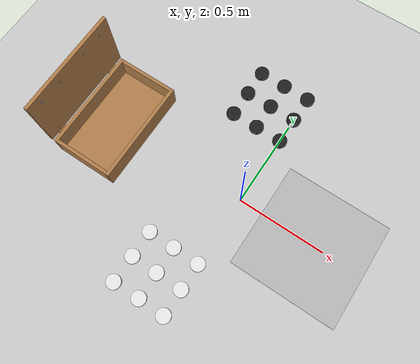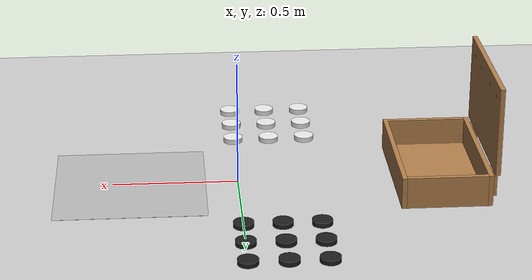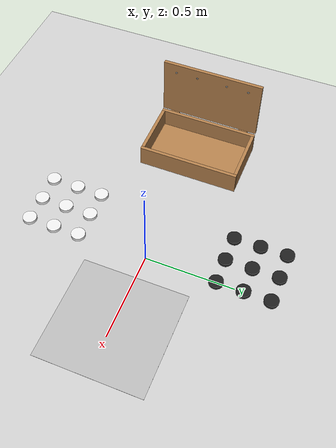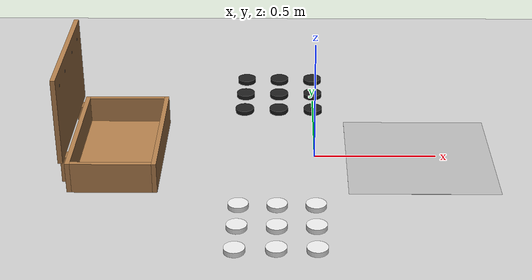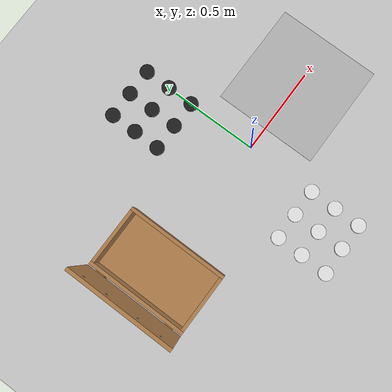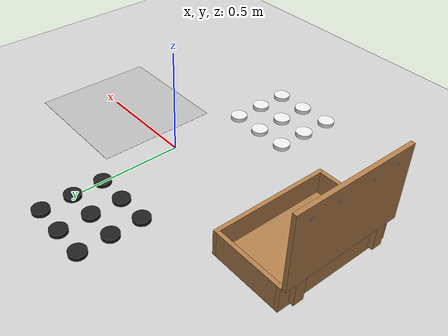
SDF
<sdf version="1.6">
 <world name="default">
  <light name="sun" type="directional">
   <pose>0 0 10 0 -0 0</pose>
   <diffuse>0.8 0.8 0.8 1</diffuse>
   <specular>0.2 0.2 0.2 1</specular>
   <attenuation>
    <range>1000</range>
    <constant>0.9</constant>
    <linear>0.01</linear>
    <quadratic>0.001</quadratic>
   </attenuation>
   <direction>-0.5 0.1 -0.9</direction>
  </light>
  <model name="ground_plane">
   <static>1</static>
   <link name="link">
    <collision name="collision">
     <geometry><plane><normal>0 0 1</normal><size>100 100</size></plane></geometry>
     <surface>
      <contact><collide_bitmask>65535</collide_bitmask></contact>
      <friction><ode><mu>100</mu><mu2>50</mu2></ode></friction>
     </surface>
    </collision>
    <visual name="visual">
     <cast_shadows>0</cast_shadows>
     <geometry><plane><normal>0 0 1</normal><size>100 100</size></plane></geometry>
     <material>
      <script><uri>file://media/materials/scripts/gazebo.material</uri><name>Gazebo/Grey</name></script>
     </material>
    </visual>
   </link>
  </model>
  <gravity>0 0 -9.8</gravity>
  <magnetic_field>6e-06 2.3e-05 -4.2e-05</magnetic_field>
  <atmosphere type="adiabatic"/>
  <physics name="default_physics" default="0" type="ode">
   <max_step_size>0.001</max_step_size>
   <real_time_factor>1</real_time_factor>
   <real_time_update_rate>1000</real_time_update_rate>
  </physics>
  <scene><ambient>0.4 0.4 0.4 1</ambient><background>0.7 0.7 0.7 1</background><shadows>1</shadows></scene>
  <audio><device>default</device></audio>
  <spherical_coordinates>
   <surface_model>EARTH_WGS84</surface_model>
   <latitude_deg>0</latitude_deg>
   <longitude_deg>0</longitude_deg>
   <elevation>0</elevation>
   <heading_deg>0</heading_deg>
  </spherical_coordinates>
  <model name="wooden_case">
   <link name="base">
    <pose>0 0 0.024 0 -0 0</pose>
    <inertial>
     <pose>-0.022184 0 0.171592 0 -0 0</pose>
     <mass>3.96264</mass>
     <inertia>
      <ixx>0.213536</ixx>
      <ixy>0</ixy>
      <ixz>0.000779377</ixz>
      <iyy>0.0708943</iyy>
      <iyz>0</iyz>
      <izz>0.154604</izz>
     </inertia>
    </inertial>
    <collision name="collision_back">
     <pose>-0.053975 0 0.1778 0 -0 0</pose>
     <geometry><box><size>0.01905 0.5461 0.3175</size></box></geometry>
     <surface>
      <contact>
       <poissons_ratio>0.347</poissons_ratio>
       <elastic_modulus>8.8e+09</elastic_modulus>
       <ode><kp>100000</kp><kd>100</kd><max_vel>100</max_vel><min_depth>0.001</min_depth></ode>
      </contact>
      <friction>
       <torsional>
        <coefficient>1</coefficient>
        <use_patch_radius>0</use_patch_radius>
        <surface_radius>0.01</surface_radius>
       </torsional>
      </friction>
     </surface>
    </collision>
    <visual name="visual_back">
     <pose>-0.053975 0 0.1778 0 -0 0</pose>
     <geometry><box><size>0.01905 0.5461 0.3175</size></box></geometry>
     <material>
      <script><uri>file://media/materials/scripts/gazebo.material</uri><name>Gazebo/Wood</name></script>
     </material>
    </visual>
    <collision name="collision_bottom">
     <pose>0 0 0.009525 0 -0 0</pose>
     <geometry><box><size>0.127 0.5842 0.01905</size></box></geometry>
     <surface>
      <contact>
       <poissons_ratio>0.347</poissons_ratio>
       <elastic_modulus>8.8e+09</elastic_modulus>
       <ode><kp>100000</kp><kd>100</kd><max_vel>100</max_vel><min_depth>0.001</min_depth></ode>
      </contact>
      <friction>
       <torsional>
        <coefficient>1</coefficient>
        <use_patch_radius>0</use_patch_radius>
        <surface_radius>0.01</surface_radius>
       </torsional>
      </friction>
     </surface>
    </collision>
    <visual name="visual_bottom">
     <pose>0 0 0.009525 0 -0 0</pose>
     <geometry><box><size>0.127 0.5842 0.01905</size></box></geometry>
     <material>
      <script><uri>file://media/materials/scripts/gazebo.material</uri><name>Gazebo/Wood</name></script>
     </material>
    </visual>
    <collision name="collision_top">
     <pose>0 0 0.346075 0 -0 0</pose>
     <geometry><box><size>0.127 0.5842 0.01905</size></box></geometry>
     <surface>
      <contact>
       <poissons_ratio>0.347</poissons_ratio>
       <elastic_modulus>8.8e+09</elastic_modulus>
       <ode><kp>100000</kp><kd>100</kd><max_vel>100</max_vel><min_depth>0.001</min_depth></ode>
      </contact>
      <friction>
       <torsional>
        <coefficient>1</coefficient>
        <use_patch_radius>0</use_patch_radius>
        <surface_radius>0.01</surface_radius>
       </torsional>
      </friction>
     </surface>
    </collision>
    <visual name="visual_top">
     <pose>0 0 0.346075 0 -0 0</pose>
     <geometry><box><size>0.127 0.5842 0.01905</size></box></geometry>
     <material>
      <script><uri>file://media/materials/scripts/gazebo.material</uri><name>Gazebo/Wood</name></script>
     </material>
    </visual>
    <collision name="collision_left">
     <pose>0 -0.282575 0.1778 0 -0 0</pose>
     <geometry><box><size>0.127 0.01905 0.3175</size></box></geometry>
     <surface>
      <contact>
       <poissons_ratio>0.347</poissons_ratio>
       <elastic_modulus>8.8e+09</elastic_modulus>
       <ode><kp>100000</kp><kd>100</kd><max_vel>100</max_vel><min_depth>0.001</min_depth></ode>
      </contact>
      <friction>
       <torsional>
        <coefficient>1</coefficient>
        <use_patch_radius>0</use_patch_radius>
        <surface_radius>0.01</surface_radius>
       </torsional>
      </friction>
     </surface>
    </collision>
    <visual name="visual_left">
     <pose>0 -0.282575 0.1778 0 -0 0</pose>
     <geometry><box><size>0.127 0.01905 0.3175</size></box></geometry>
     <material>
      <script><uri>file://media/materials/scripts/gazebo.material</uri><name>Gazebo/Wood</name></script>
     </material>
    </visual>
    <collision name="collision_right">
     <pose>0 0.282575 0.1778 0 -0 0</pose>
     <geometry><box><size>0.127 0.01905 0.3175</size></box></geometry>
     <surface>
      <contact>
       <poissons_ratio>0.347</poissons_ratio>
       <elastic_modulus>8.8e+09</elastic_modulus>
       <ode><kp>100000</kp><kd>100</kd><max_vel>100</max_vel><min_depth>0.001</min_depth></ode>
      </contact>
      <friction>
       <torsional>
        <coefficient>1</coefficient>
        <use_patch_radius>0</use_patch_radius>
        <surface_radius>0.01</surface_radius>
       </torsional>
      </friction>
     </surface>
    </collision>
    <visual name="visual_right">
     <pose>0 0.282575 0.1778 0 -0 0</pose>
     <geometry><box><size>0.127 0.01905 0.3175</size></box></geometry>
     <material>
      <script><uri>file://media/materials/scripts/gazebo.material</uri><name>Gazebo/Wood</name></script>
     </material>
    </visual>
    <collision name="collision_block_left">
     <pose>0.0095 -0.2151 -0.012 0 -0 0</pose>
     <geometry><box><size>0.108 0.05 0.024</size></box></geometry>
     <surface>
      <contact>
       <poissons_ratio>0.347</poissons_ratio>
       <elastic_modulus>8.8e+09</elastic_modulus>
       <ode><kp>100000</kp><kd>100</kd><max_vel>100</max_vel><min_depth>0.001</min_depth></ode>
      </contact>
      <friction>
       <torsional>
        <coefficient>1</coefficient>
        <use_patch_radius>0</use_patch_radius>
        <surface_radius>0.01</surface_radius>
       </torsional>
      </friction>
     </surface>
    </collision>
    <visual name="visual_block_left">
     <pose>0.0095 -0.2151 -0.012 0 -0 0</pose>
     <geometry><box><size>0.108 0.05 0.024</size></box></geometry>
     <material>
      <script><uri>file://media/materials/scripts/gazebo.material</uri><name>Gazebo/Wood</name></script>
     </material>
    </visual>
    <collision name="collision_block_right">
     <pose>0.0095 0.2151 -0.012 0 -0 0</pose>
     <geometry><box><size>0.108 0.05 0.024</size></box></geometry>
     <surface>
      <contact>
       <poissons_ratio>0.347</poissons_ratio>
       <elastic_modulus>8.8e+09</elastic_modulus>
       <ode><kp>100000</kp><kd>100</kd><max_vel>100</max_vel><min_depth>0.001</min_depth></ode>
      </contact>
      <friction>
       <torsional>
        <coefficient>1</coefficient>
        <use_patch_radius>0</use_patch_radius>
        <surface_radius>0.01</surface_radius>
       </torsional>
      </friction>
     </surface>
    </collision>
    <visual name="visual_block_right">
     <pose>0.0095 0.2151 -0.012 0 -0 0</pose>
     <geometry><box><size>0.108 0.05 0.024</size></box></geometry>
     <material>
      <script><uri>file://media/materials/scripts/gazebo.material</uri><name>Gazebo/Wood</name></script>
     </material>
    </visual>
   </link>
   <link name="lid">
    <pose>0.243775 0 0.009525 0 -0 0</pose>
    <inertial>
     <mass>1.97874</mass>
     <inertia>
      <ixx>0.0563367</ixx>
      <ixy>0</ixy>
      <ixz>0</ixz>
      <iyy>0.020911</iyy>
      <iyz>0</iyz>
      <izz>0.0771281</izz>
     </inertia>
    </inertial>
    <collision name="collision">
     <geometry><box><size>0.3556 0.5842 0.01905</size></box></geometry>
     <surface>
      <contact>
       <poissons_ratio>0.347</poissons_ratio>
       <elastic_modulus>8.8e+09</elastic_modulus>
       <ode><kp>100000</kp><kd>100</kd><max_vel>100</max_vel><min_depth>0.001</min_depth></ode>
      </contact>
      <friction>
       <torsional>
        <coefficient>1</coefficient>
        <use_patch_radius>0</use_patch_radius>
        <surface_radius>0.01</surface_radius>
       </torsional>
      </friction>
     </surface>
    </collision>
    <visual name="visual">
     <geometry><box><size>0.3556 0.5842 0.01905</size></box></geometry>
     <material>
      <script><uri>file://media/materials/scripts/gazebo.material</uri><name>Gazebo/Wood</name></script>
     </material>
    </visual>
    <visual name="tee_nut_1">
     <pose>0.122 -0.216 0 0 -0 0</pose>
     <geometry><cylinder><radius>0.00635</radius><length>0.0192405</length></cylinder></geometry>
     <material>
      <script><uri>file://media/materials/scripts/gazebo.material</uri><name>Gazebo/Grey</name></script>
     </material>
    </visual>
    <visual name="tee_nut_2">
     <pose>0.122 -0.088 0 0 -0 0</pose>
     <geometry><cylinder><radius>0.00635</radius><length>0.0192405</length></cylinder></geometry>
     <material>
      <script><uri>file://media/materials/scripts/gazebo.material</uri><name>Gazebo/Grey</name></script>
     </material>
    </visual>
    <visual name="tee_nut_3">
     <pose>0.122 0.088 0 0 -0 0</pose>
     <geometry><cylinder><radius>0.00635</radius><length>0.0192405</length></cylinder></geometry>
     <material>
      <script><uri>file://media/materials/scripts/gazebo.material</uri><name>Gazebo/Grey</name></script>
     </material>
    </visual>
    <visual name="tee_nut_4">
     <pose>0.122 0.216 0 0 -0 0</pose>
     <geometry><cylinder><radius>0.00635</radius><length>0.0192405</length></cylinder></geometry>
     <material>
      <script><uri>file://media/materials/scripts/gazebo.material</uri><name>Gazebo/Grey</name></script>
     </material>
    </visual>
   </link>
   <joint name="lid_hinge" type="revolute">
    <pose>-0.1778 0 0.01905 0 -0 0</pose>
    <parent>base</parent>
    <child>lid</child>
    <axis>
     <xyz>0 1 0</xyz>
     <limit><upper>0.523599</upper><lower>-1.5708</lower></limit>
     <use_parent_model_frame>0</use_parent_model_frame>
     <dynamics><spring_reference>0</spring_reference><spring_stiffness>0</spring_stiffness></dynamics>
    </axis>
   </joint>
   <pose>-0.999997 0 0.062475 0 -1.57074 3.14</pose>
  </model>
  <model name="black_piece">
   <link name="link">
    <inertial>
     <mass>0.2</mass>
     <inertia>
      <ixx>8.667e-05</ixx>
      <ixy>0</ixy>
      <ixz>0</ixz>
      <iyy>8.667e-05</iyy>
      <iyz>0</iyz>
      <izz>0.00016</izz>
     </inertia>
    </inertial>
    <visual name="visual">
     <geometry><cylinder><radius>0.04</radius><length>0.02</length></cylinder></geometry>
     <material>
      <script><name>Gazebo/Black</name><uri>file://media/materials/scripts/gazebo.material</uri></script>
      <shader type="vertex"><normal_map>__default__</normal_map></shader>
     </material>
    </visual>
    <collision name="collision">
     <geometry><cylinder><radius>0.04</radius><length>0.02</length></cylinder></geometry>
     <surface>
      <friction>
       <ode><mu>1</mu><mu2>1</mu2><fdir1>0 0 0</fdir1><slip1>0</slip1><slip2>0</slip2></ode>
       <torsional>
        <coefficient>1</coefficient>
        <patch_radius>0</patch_radius>
        <surface_radius>0</surface_radius>
        <use_patch_radius>1</use_patch_radius>
        <ode><slip>0</slip></ode>
       </torsional>
      </friction>
      <bounce><restitution_coefficient>0</restitution_coefficient><threshold>1e+06</threshold></bounce>
      <contact>
       <collide_without_contact>0</collide_without_contact>
       <collide_without_contact_bitmask>1</collide_without_contact_bitmask>
       <collide_bitmask>1</collide_bitmask>
       <ode>
        <soft_cfm>0</soft_cfm>
        <soft_erp>0.2</soft_erp>
        <kp>1e+13</kp>
        <kd>1</kd>
        <max_vel>1</max_vel>
        <min_depth>0</min_depth>
       </ode>
       <bullet>
        <split_impulse>1</split_impulse>
        <split_impulse_penetration_threshold>-0.01</split_impulse_penetration_threshold>
        <soft_cfm>0</soft_cfm>
        <soft_erp>0.2</soft_erp>
        <kp>1e+13</kp>
        <kd>1</kd>
       </bullet>
      </contact>
     </surface>
    </collision>
   </link>
   <static>0</static>
   <pose>-0.3 0.400001 0.009995 -3e-05 3e-05 0.000168</pose>
  </model>
  <model name="black_piece_0">
   <link name="link">
    <inertial>
     <mass>0.2</mass>
     <inertia>
      <ixx>8.667e-05</ixx>
      <ixy>0</ixy>
      <ixz>0</ixz>
      <iyy>8.667e-05</iyy>
      <iyz>0</iyz>
      <izz>0.00016</izz>
     </inertia>
    </inertial>
    <visual name="visual">
     <geometry><cylinder><radius>0.04</radius><length>0.02</length></cylinder></geometry>
     <material>
      <script><name>Gazebo/Black</name><uri>file://media/materials/scripts/gazebo.material</uri></script>
      <shader type="vertex"><normal_map>__default__</normal_map></shader>
     </material>
    </visual>
    <collision name="collision">
     <geometry><cylinder><radius>0.04</radius><length>0.02</length></cylinder></geometry>
     <surface>
      <friction>
       <ode><mu>1</mu><mu2>1</mu2><fdir1>0 0 0</fdir1><slip1>0</slip1><slip2>0</slip2></ode>
       <torsional>
        <coefficient>1</coefficient>
        <patch_radius>0</patch_radius>
        <surface_radius>0</surface_radius>
        <use_patch_radius>1</use_patch_radius>
        <ode><slip>0</slip></ode>
       </torsional>
      </friction>
      <bounce><restitution_coefficient>0</restitution_coefficient><threshold>1e+06</threshold></bounce>
      <contact>
       <collide_without_contact>0</collide_without_contact>
       <collide_without_contact_bitmask>1</collide_without_contact_bitmask>
       <collide_bitmask>1</collide_bitmask>
       <ode>
        <soft_cfm>0</soft_cfm>
        <soft_erp>0.2</soft_erp>
        <kp>1e+13</kp>
        <kd>1</kd>
        <max_vel>1</max_vel>
        <min_depth>0</min_depth>
       </ode>
       <bullet>
        <split_impulse>1</split_impulse>
        <split_impulse_penetration_threshold>-0.01</split_impulse_penetration_threshold>
        <soft_cfm>0</soft_cfm>
        <soft_erp>0.2</soft_erp>
        <kp>1e+13</kp>
        <kd>1</kd>
       </bullet>
      </contact>
     </surface>
    </collision>
   </link>
   <static>0</static>
   <pose>2e-06 0.400008 0.010007 -0.000196 0.000505 0.156241</pose>
  </model>
  <model name="black_piece_1">
   <link name="link">
    <inertial>
     <mass>0.2</mass>
     <inertia>
      <ixx>8.667e-05</ixx>
      <ixy>0</ixy>
      <ixz>0</ixz>
      <iyy>8.667e-05</iyy>
      <iyz>0</iyz>
      <izz>0.00016</izz>
     </inertia>
    </inertial>
    <visual name="visual">
     <geometry><cylinder><radius>0.04</radius><length>0.02</length></cylinder></geometry>
     <material>
      <script><name>Gazebo/Black</name><uri>file://media/materials/scripts/gazebo.material</uri></script>
      <shader type="vertex"><normal_map>__default__</normal_map></shader>
     </material>
    </visual>
    <collision name="collision">
     <geometry><cylinder><radius>0.04</radius><length>0.02</length></cylinder></geometry>
     <surface>
      <friction>
       <ode><mu>1</mu><mu2>1</mu2><fdir1>0 0 0</fdir1><slip1>0</slip1><slip2>0</slip2></ode>
       <torsional>
        <coefficient>1</coefficient>
        <patch_radius>0</patch_radius>
        <surface_radius>0</surface_radius>
        <use_patch_radius>1</use_patch_radius>
        <ode><slip>0</slip></ode>
       </torsional>
      </friction>
      <bounce><restitution_coefficient>0</restitution_coefficient><threshold>1e+06</threshold></bounce>
      <contact>
       <collide_without_contact>0</collide_without_contact>
       <collide_without_contact_bitmask>1</collide_without_contact_bitmask>
       <collide_bitmask>1</collide_bitmask>
       <ode>
        <soft_cfm>0</soft_cfm>
        <soft_erp>0.2</soft_erp>
        <kp>1e+13</kp>
        <kd>1</kd>
        <max_vel>1</max_vel>
        <min_depth>0</min_depth>
       </ode>
       <bullet>
        <split_impulse>1</split_impulse>
        <split_impulse_penetration_threshold>-0.01</split_impulse_penetration_threshold>
        <soft_cfm>0</soft_cfm>
        <soft_erp>0.2</soft_erp>
        <kp>1e+13</kp>
        <kd>1</kd>
       </bullet>
      </contact>
     </surface>
    </collision>
   </link>
   <static>0</static>
   <pose>-1e-06 0.55 0.009995 6.5e-05 -6.5e-05 1.5e-05</pose>
  </model>
  <model name="black_piece_2">
   <link name="link">
    <inertial>
     <mass>0.2</mass>
     <inertia>
      <ixx>8.667e-05</ixx>
      <ixy>0</ixy>
      <ixz>0</ixz>
      <iyy>8.667e-05</iyy>
      <iyz>0</iyz>
      <izz>0.00016</izz>
     </inertia>
    </inertial>
    <visual name="visual">
     <geometry><cylinder><radius>0.04</radius><length>0.02</length></cylinder></geometry>
     <material>
      <script><name>Gazebo/Black</name><uri>file://media/materials/scripts/gazebo.material</uri></script>
      <shader type="vertex"><normal_map>__default__</normal_map></shader>
     </material>
    </visual>
    <collision name="collision">
     <geometry><cylinder><radius>0.04</radius><length>0.02</length></cylinder></geometry>
     <surface>
      <friction>
       <ode><mu>1</mu><mu2>1</mu2><fdir1>0 0 0</fdir1><slip1>0</slip1><slip2>0</slip2></ode>
       <torsional>
        <coefficient>1</coefficient>
        <patch_radius>0</patch_radius>
        <surface_radius>0</surface_radius>
        <use_patch_radius>1</use_patch_radius>
        <ode><slip>0</slip></ode>
       </torsional>
      </friction>
      <bounce><restitution_coefficient>0</restitution_coefficient><threshold>1e+06</threshold></bounce>
      <contact>
       <collide_without_contact>0</collide_without_contact>
       <collide_without_contact_bitmask>1</collide_without_contact_bitmask>
       <collide_bitmask>1</collide_bitmask>
       <ode>
        <soft_cfm>0</soft_cfm>
        <soft_erp>0.2</soft_erp>
        <kp>1e+13</kp>
        <kd>1</kd>
        <max_vel>1</max_vel>
        <min_depth>0</min_depth>
       </ode>
       <bullet>
        <split_impulse>1</split_impulse>
        <split_impulse_penetration_threshold>-0.01</split_impulse_penetration_threshold>
        <soft_cfm>0</soft_cfm>
        <soft_erp>0.2</soft_erp>
        <kp>1e+13</kp>
        <kd>1</kd>
       </bullet>
      </contact>
     </surface>
    </collision>
   </link>
   <static>0</static>
   <pose>0.000928 0.700002 0.009995 -5.5e-05 4.4e-05 0.348925</pose>
  </model>
  <model name="black_piece_3">
   <link name="link">
    <inertial>
     <mass>0.2</mass>
     <inertia>
      <ixx>8.667e-05</ixx>
      <ixy>0</ixy>
      <ixz>0</ixz>
      <iyy>8.667e-05</iyy>
      <iyz>0</iyz>
      <izz>0.00016</izz>
     </inertia>
    </inertial>
    <visual name="visual">
     <geometry><cylinder><radius>0.04</radius><length>0.02</length></cylinder></geometry>
     <material>
      <script><name>Gazebo/Black</name><uri>file://media/materials/scripts/gazebo.material</uri></script>
      <shader type="vertex"><normal_map>__default__</normal_map></shader>
     </material>
    </visual>
    <collision name="collision">
     <geometry><cylinder><radius>0.04</radius><length>0.02</length></cylinder></geometry>
     <surface>
      <friction>
       <ode><mu>1</mu><mu2>1</mu2><fdir1>0 0 0</fdir1><slip1>0</slip1><slip2>0</slip2></ode>
       <torsional>
        <coefficient>1</coefficient>
        <patch_radius>0</patch_radius>
        <surface_radius>0</surface_radius>
        <use_patch_radius>1</use_patch_radius>
        <ode><slip>0</slip></ode>
       </torsional>
      </friction>
      <bounce><restitution_coefficient>0</restitution_coefficient><threshold>1e+06</threshold></bounce>
      <contact>
       <collide_without_contact>0</collide_without_contact>
       <collide_without_contact_bitmask>1</collide_without_contact_bitmask>
       <collide_bitmask>1</collide_bitmask>
       <ode>
        <soft_cfm>0</soft_cfm>
        <soft_erp>0.2</soft_erp>
        <kp>1e+13</kp>
        <kd>1</kd>
        <max_vel>1</max_vel>
        <min_depth>0</min_depth>
       </ode>
       <bullet>
        <split_impulse>1</split_impulse>
        <split_impulse_penetration_threshold>-0.01</split_impulse_penetration_threshold>
        <soft_cfm>0</soft_cfm>
        <soft_erp>0.2</soft_erp>
        <kp>1e+13</kp>
        <kd>1</kd>
       </bullet>
      </contact>
     </surface>
    </collision>
   </link>
   <static>0</static>
   <pose>-0.3 0.7 0.009995 -3e-05 3e-05 -1.2e-05</pose>
  </model>
  <model name="black_piece_4">
   <link name="link">
    <inertial>
     <mass>0.2</mass>
     <inertia>
      <ixx>8.667e-05</ixx>
      <ixy>0</ixy>
      <ixz>0</ixz>
      <iyy>8.667e-05</iyy>
      <iyz>0</iyz>
      <izz>0.00016</izz>
     </inertia>
    </inertial>
    <visual name="visual">
     <geometry><cylinder><radius>0.04</radius><length>0.02</length></cylinder></geometry>
     <material>
      <script><name>Gazebo/Black</name><uri>file://media/materials/scripts/gazebo.material</uri></script>
      <shader type="vertex"><normal_map>__default__</normal_map></shader>
     </material>
    </visual>
    <collision name="collision">
     <geometry><cylinder><radius>0.04</radius><length>0.02</length></cylinder></geometry>
     <surface>
      <friction>
       <ode><mu>1</mu><mu2>1</mu2><fdir1>0 0 0</fdir1><slip1>0</slip1><slip2>0</slip2></ode>
       <torsional>
        <coefficient>1</coefficient>
        <patch_radius>0</patch_radius>
        <surface_radius>0</surface_radius>
        <use_patch_radius>1</use_patch_radius>
        <ode><slip>0</slip></ode>
       </torsional>
      </friction>
      <bounce><restitution_coefficient>0</restitution_coefficient><threshold>1e+06</threshold></bounce>
      <contact>
       <collide_without_contact>0</collide_without_contact>
       <collide_without_contact_bitmask>1</collide_without_contact_bitmask>
       <collide_bitmask>1</collide_bitmask>
       <ode>
        <soft_cfm>0</soft_cfm>
        <soft_erp>0.2</soft_erp>
        <kp>1e+13</kp>
        <kd>1</kd>
        <max_vel>1</max_vel>
        <min_depth>0</min_depth>
       </ode>
       <bullet>
        <split_impulse>1</split_impulse>
        <split_impulse_penetration_threshold>-0.01</split_impulse_penetration_threshold>
        <soft_cfm>0</soft_cfm>
        <soft_erp>0.2</soft_erp>
        <kp>1e+13</kp>
        <kd>1</kd>
       </bullet>
      </contact>
     </surface>
    </collision>
   </link>
   <static>0</static>
   <pose>-0.3 0.549993 0.009996 3e-05 -3e-05 -8e-06</pose>
  </model>
  <model name="black_piece_5">
   <link name="link">
    <inertial>
     <mass>0.2</mass>
     <inertia>
      <ixx>8.667e-05</ixx>
      <ixy>0</ixy>
      <ixz>0</ixz>
      <iyy>8.667e-05</iyy>
      <iyz>0</iyz>
      <izz>0.00016</izz>
     </inertia>
    </inertial>
    <visual name="visual">
     <geometry><cylinder><radius>0.04</radius><length>0.02</length></cylinder></geometry>
     <material>
      <script><name>Gazebo/Black</name><uri>file://media/materials/scripts/gazebo.material</uri></script>
      <shader type="vertex"><normal_map>__default__</normal_map></shader>
     </material>
    </visual>
    <collision name="collision">
     <geometry><cylinder><radius>0.04</radius><length>0.02</length></cylinder></geometry>
     <surface>
      <friction>
       <ode><mu>1</mu><mu2>1</mu2><fdir1>0 0 0</fdir1><slip1>0</slip1><slip2>0</slip2></ode>
       <torsional>
        <coefficient>1</coefficient>
        <patch_radius>0</patch_radius>
        <surface_radius>0</surface_radius>
        <use_patch_radius>1</use_patch_radius>
        <ode><slip>0</slip></ode>
       </torsional>
      </friction>
      <bounce><restitution_coefficient>0</restitution_coefficient><threshold>1e+06</threshold></bounce>
      <contact>
       <collide_without_contact>0</collide_without_contact>
       <collide_without_contact_bitmask>1</collide_without_contact_bitmask>
       <collide_bitmask>1</collide_bitmask>
       <ode>
        <soft_cfm>0</soft_cfm>
        <soft_erp>0.2</soft_erp>
        <kp>1e+13</kp>
        <kd>1</kd>
        <max_vel>1</max_vel>
        <min_depth>0</min_depth>
       </ode>
       <bullet>
        <split_impulse>1</split_impulse>
        <split_impulse_penetration_threshold>-0.01</split_impulse_penetration_threshold>
        <soft_cfm>0</soft_cfm>
        <soft_erp>0.2</soft_erp>
        <kp>1e+13</kp>
        <kd>1</kd>
       </bullet>
      </contact>
     </surface>
    </collision>
   </link>
   <static>0</static>
   <pose>-0.15006 0.400039 0.010073 0.001366 0.001703 -2.39317</pose>
  </model>
  <model name="black_piece_6">
   <link name="link">
    <inertial>
     <mass>0.2</mass>
     <inertia>
      <ixx>8.667e-05</ixx>
      <ixy>0</ixy>
      <ixz>0</ixz>
      <iyy>8.667e-05</iyy>
      <iyz>0</iyz>
      <izz>0.00016</izz>
     </inertia>
    </inertial>
    <visual name="visual">
     <geometry><cylinder><radius>0.04</radius><length>0.02</length></cylinder></geometry>
     <material>
      <script><name>Gazebo/Black</name><uri>file://media/materials/scripts/gazebo.material</uri></script>
      <shader type="vertex"><normal_map>__default__</normal_map></shader>
     </material>
    </visual>
    <collision name="collision">
     <geometry><cylinder><radius>0.04</radius><length>0.02</length></cylinder></geometry>
     <surface>
      <friction>
       <ode><mu>1</mu><mu2>1</mu2><fdir1>0 0 0</fdir1><slip1>0</slip1><slip2>0</slip2></ode>
       <torsional>
        <coefficient>1</coefficient>
        <patch_radius>0</patch_radius>
        <surface_radius>0</surface_radius>
        <use_patch_radius>1</use_patch_radius>
        <ode><slip>0</slip></ode>
       </torsional>
      </friction>
      <bounce><restitution_coefficient>0</restitution_coefficient><threshold>1e+06</threshold></bounce>
      <contact>
       <collide_without_contact>0</collide_without_contact>
       <collide_without_contact_bitmask>1</collide_without_contact_bitmask>
       <collide_bitmask>1</collide_bitmask>
       <ode>
        <soft_cfm>0</soft_cfm>
        <soft_erp>0.2</soft_erp>
        <kp>1e+13</kp>
        <kd>1</kd>
        <max_vel>1</max_vel>
        <min_depth>0</min_depth>
       </ode>
       <bullet>
        <split_impulse>1</split_impulse>
        <split_impulse_penetration_threshold>-0.01</split_impulse_penetration_threshold>
        <soft_cfm>0</soft_cfm>
        <soft_erp>0.2</soft_erp>
        <kp>1e+13</kp>
        <kd>1</kd>
       </bullet>
      </contact>
     </surface>
    </collision>
   </link>
   <static>0</static>
   <pose>-0.15 0.549993 0.009995 3e-05 -3e-05 -0.001864</pose>
  </model>
  <model name="black_piece_7">
   <link name="link">
    <inertial>
     <mass>0.2</mass>
     <inertia>
      <ixx>8.667e-05</ixx>
      <ixy>0</ixy>
      <ixz>0</ixz>
      <iyy>8.667e-05</iyy>
      <iyz>0</iyz>
      <izz>0.00016</izz>
     </inertia>
    </inertial>
    <visual name="visual">
     <geometry><cylinder><radius>0.04</radius><length>0.02</length></cylinder></geometry>
     <material>
      <script><name>Gazebo/Black</name><uri>file://media/materials/scripts/gazebo.material</uri></script>
      <shader type="vertex"><normal_map>__default__</normal_map></shader>
     </material>
    </visual>
    <collision name="collision">
     <geometry><cylinder><radius>0.04</radius><length>0.02</length></cylinder></geometry>
     <surface>
      <friction>
       <ode><mu>1</mu><mu2>1</mu2><fdir1>0 0 0</fdir1><slip1>0</slip1><slip2>0</slip2></ode>
       <torsional>
        <coefficient>1</coefficient>
        <patch_radius>0</patch_radius>
        <surface_radius>0</surface_radius>
        <use_patch_radius>1</use_patch_radius>
        <ode><slip>0</slip></ode>
       </torsional>
      </friction>
      <bounce><restitution_coefficient>0</restitution_coefficient><threshold>1e+06</threshold></bounce>
      <contact>
       <collide_without_contact>0</collide_without_contact>
       <collide_without_contact_bitmask>1</collide_without_contact_bitmask>
       <collide_bitmask>1</collide_bitmask>
       <ode>
        <soft_cfm>0</soft_cfm>
        <soft_erp>0.2</soft_erp>
        <kp>1e+13</kp>
        <kd>1</kd>
        <max_vel>1</max_vel>
        <min_depth>0</min_depth>
       </ode>
       <bullet>
        <split_impulse>1</split_impulse>
        <split_impulse_penetration_threshold>-0.01</split_impulse_penetration_threshold>
        <soft_cfm>0</soft_cfm>
        <soft_erp>0.2</soft_erp>
        <kp>1e+13</kp>
        <kd>1</kd>
       </bullet>
      </contact>
     </surface>
    </collision>
   </link>
   <static>0</static>
   <pose>-0.149999 0.700007 0.010009 -0.000329 0.000495 -0.310218</pose>
  </model>
  <model name="white_piece">
   <link name="link">
    <inertial>
     <mass>0.2</mass>
     <inertia>
      <ixx>8.667e-05</ixx>
      <ixy>0</ixy>
      <ixz>0</ixz>
      <iyy>8.667e-05</iyy>
      <iyz>0</iyz>
      <izz>0.00016</izz>
     </inertia>
    </inertial>
    <visual name="visual">
     <geometry><cylinder><radius>0.04</radius><length>0.02</length></cylinder></geometry>
     <material>
      <script><name>Gazebo/White</name><uri>file://media/materials/scripts/gazebo.material</uri></script>
      <shader type="vertex"><normal_map>__default__</normal_map></shader>
     </material>
    </visual>
    <collision name="collision">
     <geometry><cylinder><radius>0.04</radius><length>0.02</length></cylinder></geometry>
     <surface>
      <friction>
       <ode><mu>1</mu><mu2>1</mu2><fdir1>0 0 0</fdir1><slip1>0</slip1><slip2>0</slip2></ode>
       <torsional>
        <coefficient>1</coefficient>
        <patch_radius>0</patch_radius>
        <surface_radius>0</surface_radius>
        <use_patch_radius>1</use_patch_radius>
        <ode><slip>0</slip></ode>
       </torsional>
      </friction>
      <bounce><restitution_coefficient>0</restitution_coefficient><threshold>1e+06</threshold></bounce>
      <contact>
       <collide_without_contact>0</collide_without_contact>
       <collide_without_contact_bitmask>1</collide_without_contact_bitmask>
       <collide_bitmask>1</collide_bitmask>
       <ode>
        <soft_cfm>0</soft_cfm>
        <soft_erp>0.2</soft_erp>
        <kp>1e+13</kp>
        <kd>1</kd>
        <max_vel>1</max_vel>
        <min_depth>0</min_depth>
       </ode>
       <bullet>
        <split_impulse>1</split_impulse>
        <split_impulse_penetration_threshold>-0.01</split_impulse_penetration_threshold>
        <soft_cfm>0</soft_cfm>
        <soft_erp>0.2</soft_erp>
        <kp>1e+13</kp>
        <kd>1</kd>
       </bullet>
      </contact>
     </surface>
    </collision>
   </link>
   <static>0</static>
   <pose>-0.3 -0.399993 0.009996 3.6e-05 2.3e-05 -1.34997</pose>
  </model>
  <model name="white_piece_0">
   <link name="link">
    <inertial>
     <mass>0.2</mass>
     <inertia>
      <ixx>8.667e-05</ixx>
      <ixy>0</ixy>
      <ixz>0</ixz>
      <iyy>8.667e-05</iyy>
      <iyz>0</iyz>
      <izz>0.00016</izz>
     </inertia>
    </inertial>
    <visual name="visual">
     <geometry><cylinder><radius>0.04</radius><length>0.02</length></cylinder></geometry>
     <material>
      <script><name>Gazebo/White</name><uri>file://media/materials/scripts/gazebo.material</uri></script>
      <shader type="vertex"><normal_map>__default__</normal_map></shader>
     </material>
    </visual>
    <collision name="collision">
     <geometry><cylinder><radius>0.04</radius><length>0.02</length></cylinder></geometry>
     <surface>
      <friction>
       <ode><mu>1</mu><mu2>1</mu2><fdir1>0 0 0</fdir1><slip1>0</slip1><slip2>0</slip2></ode>
       <torsional>
        <coefficient>1</coefficient>
        <patch_radius>0</patch_radius>
        <surface_radius>0</surface_radius>
        <use_patch_radius>1</use_patch_radius>
        <ode><slip>0</slip></ode>
       </torsional>
      </friction>
      <bounce><restitution_coefficient>0</restitution_coefficient><threshold>1e+06</threshold></bounce>
      <contact>
       <collide_without_contact>0</collide_without_contact>
       <collide_without_contact_bitmask>1</collide_without_contact_bitmask>
       <collide_bitmask>1</collide_bitmask>
       <ode>
        <soft_cfm>0</soft_cfm>
        <soft_erp>0.2</soft_erp>
        <kp>1e+13</kp>
        <kd>1</kd>
        <max_vel>1</max_vel>
        <min_depth>0</min_depth>
       </ode>
       <bullet>
        <split_impulse>1</split_impulse>
        <split_impulse_penetration_threshold>-0.01</split_impulse_penetration_threshold>
        <soft_cfm>0</soft_cfm>
        <soft_erp>0.2</soft_erp>
        <kp>1e+13</kp>
        <kd>1</kd>
       </bullet>
      </contact>
     </surface>
    </collision>
   </link>
   <static>0</static>
   <pose>-3e-06 -0.399995 0.010007 -0.000251 -0.000479 -1.55206</pose>
  </model>
  <model name="white_piece_1">
   <link name="link">
    <inertial>
     <mass>0.2</mass>
     <inertia>
      <ixx>8.667e-05</ixx>
      <ixy>0</ixy>
      <ixz>0</ixz>
      <iyy>8.667e-05</iyy>
      <iyz>0</iyz>
      <izz>0.00016</izz>
     </inertia>
    </inertial>
    <visual name="visual">
     <geometry><cylinder><radius>0.04</radius><length>0.02</length></cylinder></geometry>
     <material>
      <script><name>Gazebo/White</name><uri>file://media/materials/scripts/gazebo.material</uri></script>
      <shader type="vertex"><normal_map>__default__</normal_map></shader>
     </material>
    </visual>
    <collision name="collision">
     <geometry><cylinder><radius>0.04</radius><length>0.02</length></cylinder></geometry>
     <surface>
      <friction>
       <ode><mu>1</mu><mu2>1</mu2><fdir1>0 0 0</fdir1><slip1>0</slip1><slip2>0</slip2></ode>
       <torsional>
        <coefficient>1</coefficient>
        <patch_radius>0</patch_radius>
        <surface_radius>0</surface_radius>
        <use_patch_radius>1</use_patch_radius>
        <ode><slip>0</slip></ode>
       </torsional>
      </friction>
      <bounce><restitution_coefficient>0</restitution_coefficient><threshold>1e+06</threshold></bounce>
      <contact>
       <collide_without_contact>0</collide_without_contact>
       <collide_without_contact_bitmask>1</collide_without_contact_bitmask>
       <collide_bitmask>1</collide_bitmask>
       <ode>
        <soft_cfm>0</soft_cfm>
        <soft_erp>0.2</soft_erp>
        <kp>1e+13</kp>
        <kd>1</kd>
        <max_vel>1</max_vel>
        <min_depth>0</min_depth>
       </ode>
       <bullet>
        <split_impulse>1</split_impulse>
        <split_impulse_penetration_threshold>-0.01</split_impulse_penetration_threshold>
        <soft_cfm>0</soft_cfm>
        <soft_erp>0.2</soft_erp>
        <kp>1e+13</kp>
        <kd>1</kd>
       </bullet>
      </contact>
     </surface>
    </collision>
   </link>
   <static>0</static>
   <pose>-0.303034 -0.704254 0.010009 0.000428 -0.000393 -0.307081</pose>
  </model>
  <model name="white_piece_2">
   <link name="link">
    <inertial>
     <mass>0.2</mass>
     <inertia>
      <ixx>8.667e-05</ixx>
      <ixy>0</ixy>
      <ixz>0</ixz>
      <iyy>8.667e-05</iyy>
      <iyz>0</iyz>
      <izz>0.00016</izz>
     </inertia>
    </inertial>
    <visual name="visual">
     <geometry><cylinder><radius>0.04</radius><length>0.02</length></cylinder></geometry>
     <material>
      <script><name>Gazebo/White</name><uri>file://media/materials/scripts/gazebo.material</uri></script>
      <shader type="vertex"><normal_map>__default__</normal_map></shader>
     </material>
    </visual>
    <collision name="collision">
     <geometry><cylinder><radius>0.04</radius><length>0.02</length></cylinder></geometry>
     <surface>
      <friction>
       <ode><mu>1</mu><mu2>1</mu2><fdir1>0 0 0</fdir1><slip1>0</slip1><slip2>0</slip2></ode>
       <torsional>
        <coefficient>1</coefficient>
        <patch_radius>0</patch_radius>
        <surface_radius>0</surface_radius>
        <use_patch_radius>1</use_patch_radius>
        <ode><slip>0</slip></ode>
       </torsional>
      </friction>
      <bounce><restitution_coefficient>0</restitution_coefficient><threshold>1e+06</threshold></bounce>
      <contact>
       <collide_without_contact>0</collide_without_contact>
       <collide_without_contact_bitmask>1</collide_without_contact_bitmask>
       <collide_bitmask>1</collide_bitmask>
       <ode>
        <soft_cfm>0</soft_cfm>
        <soft_erp>0.2</soft_erp>
        <kp>1e+13</kp>
        <kd>1</kd>
        <max_vel>1</max_vel>
        <min_depth>0</min_depth>
       </ode>
       <bullet>
        <split_impulse>1</split_impulse>
        <split_impulse_penetration_threshold>-0.01</split_impulse_penetration_threshold>
        <soft_cfm>0</soft_cfm>
        <soft_erp>0.2</soft_erp>
        <kp>1e+13</kp>
        <kd>1</kd>
       </bullet>
      </contact>
     </surface>
    </collision>
   </link>
   <static>0</static>
   <pose>-1e-06 -0.549998 0.009996 -5.9e-05 -7.7e-05 -0.000338</pose>
  </model>
  <model name="white_piece_3">
   <link name="link">
    <inertial>
     <mass>0.2</mass>
     <inertia>
      <ixx>8.667e-05</ixx>
      <ixy>0</ixy>
      <ixz>0</ixz>
      <iyy>8.667e-05</iyy>
      <iyz>0</iyz>
      <izz>0.00016</izz>
     </inertia>
    </inertial>
    <visual name="visual">
     <geometry><cylinder><radius>0.04</radius><length>0.02</length></cylinder></geometry>
     <material>
      <script><name>Gazebo/White</name><uri>file://media/materials/scripts/gazebo.material</uri></script>
      <shader type="vertex"><normal_map>__default__</normal_map></shader>
     </material>
    </visual>
    <collision name="collision">
     <geometry><cylinder><radius>0.04</radius><length>0.02</length></cylinder></geometry>
     <surface>
      <friction>
       <ode><mu>1</mu><mu2>1</mu2><fdir1>0 0 0</fdir1><slip1>0</slip1><slip2>0</slip2></ode>
       <torsional>
        <coefficient>1</coefficient>
        <patch_radius>0</patch_radius>
        <surface_radius>0</surface_radius>
        <use_patch_radius>1</use_patch_radius>
        <ode><slip>0</slip></ode>
       </torsional>
      </friction>
      <bounce><restitution_coefficient>0</restitution_coefficient><threshold>1e+06</threshold></bounce>
      <contact>
       <collide_without_contact>0</collide_without_contact>
       <collide_without_contact_bitmask>1</collide_without_contact_bitmask>
       <collide_bitmask>1</collide_bitmask>
       <ode>
        <soft_cfm>0</soft_cfm>
        <soft_erp>0.2</soft_erp>
        <kp>1e+13</kp>
        <kd>1</kd>
        <max_vel>1</max_vel>
        <min_depth>0</min_depth>
       </ode>
       <bullet>
        <split_impulse>1</split_impulse>
        <split_impulse_penetration_threshold>-0.01</split_impulse_penetration_threshold>
        <soft_cfm>0</soft_cfm>
        <soft_erp>0.2</soft_erp>
        <kp>1e+13</kp>
        <kd>1</kd>
       </bullet>
      </contact>
     </surface>
    </collision>
   </link>
   <static>0</static>
   <pose>-3.4e-05 -0.699959 0.009995 9e-05 0.00013 -0.008757</pose>
  </model>
  <model name="white_piece_4">
   <link name="link">
    <inertial>
     <mass>0.2</mass>
     <inertia>
      <ixx>8.667e-05</ixx>
      <ixy>0</ixy>
      <ixz>0</ixz>
      <iyy>8.667e-05</iyy>
      <iyz>0</iyz>
      <izz>0.00016</izz>
     </inertia>
    </inertial>
    <visual name="visual">
     <geometry><cylinder><radius>0.04</radius><length>0.02</length></cylinder></geometry>
     <material>
      <script><name>Gazebo/White</name><uri>file://media/materials/scripts/gazebo.material</uri></script>
      <shader type="vertex"><normal_map>__default__</normal_map></shader>
     </material>
    </visual>
    <collision name="collision">
     <geometry><cylinder><radius>0.04</radius><length>0.02</length></cylinder></geometry>
     <surface>
      <friction>
       <ode><mu>1</mu><mu2>1</mu2><fdir1>0 0 0</fdir1><slip1>0</slip1><slip2>0</slip2></ode>
       <torsional>
        <coefficient>1</coefficient>
        <patch_radius>0</patch_radius>
        <surface_radius>0</surface_radius>
        <use_patch_radius>1</use_patch_radius>
        <ode><slip>0</slip></ode>
       </torsional>
      </friction>
      <bounce><restitution_coefficient>0</restitution_coefficient><threshold>1e+06</threshold></bounce>
      <contact>
       <collide_without_contact>0</collide_without_contact>
       <collide_without_contact_bitmask>1</collide_without_contact_bitmask>
       <collide_bitmask>1</collide_bitmask>
       <ode>
        <soft_cfm>0</soft_cfm>
        <soft_erp>0.2</soft_erp>
        <kp>1e+13</kp>
        <kd>1</kd>
        <max_vel>1</max_vel>
        <min_depth>0</min_depth>
       </ode>
       <bullet>
        <split_impulse>1</split_impulse>
        <split_impulse_penetration_threshold>-0.01</split_impulse_penetration_threshold>
        <soft_cfm>0</soft_cfm>
        <soft_erp>0.2</soft_erp>
        <kp>1e+13</kp>
        <kd>1</kd>
       </bullet>
      </contact>
     </surface>
    </collision>
   </link>
   <static>0</static>
   <pose>-0.150001 -0.549999 0.009996 3e-05 -3e-05 1e-06</pose>
  </model>
  <model name="white_piece_5">
   <link name="link">
    <inertial>
     <mass>0.2</mass>
     <inertia>
      <ixx>8.667e-05</ixx>
      <ixy>0</ixy>
      <ixz>0</ixz>
      <iyy>8.667e-05</iyy>
      <iyz>0</iyz>
      <izz>0.00016</izz>
     </inertia>
    </inertial>
    <visual name="visual">
     <geometry><cylinder><radius>0.04</radius><length>0.02</length></cylinder></geometry>
     <material>
      <script><name>Gazebo/White</name><uri>file://media/materials/scripts/gazebo.material</uri></script>
      <shader type="vertex"><normal_map>__default__</normal_map></shader>
     </material>
    </visual>
    <collision name="collision">
     <geometry><cylinder><radius>0.04</radius><length>0.02</length></cylinder></geometry>
     <surface>
      <friction>
       <ode><mu>1</mu><mu2>1</mu2><fdir1>0 0 0</fdir1><slip1>0</slip1><slip2>0</slip2></ode>
       <torsional>
        <coefficient>1</coefficient>
        <patch_radius>0</patch_radius>
        <surface_radius>0</surface_radius>
        <use_patch_radius>1</use_patch_radius>
        <ode><slip>0</slip></ode>
       </torsional>
      </friction>
      <bounce><restitution_coefficient>0</restitution_coefficient><threshold>1e+06</threshold></bounce>
      <contact>
       <collide_without_contact>0</collide_without_contact>
       <collide_without_contact_bitmask>1</collide_without_contact_bitmask>
       <collide_bitmask>1</collide_bitmask>
       <ode>
        <soft_cfm>0</soft_cfm>
        <soft_erp>0.2</soft_erp>
        <kp>1e+13</kp>
        <kd>1</kd>
        <max_vel>1</max_vel>
        <min_depth>0</min_depth>
       </ode>
       <bullet>
        <split_impulse>1</split_impulse>
        <split_impulse_penetration_threshold>-0.01</split_impulse_penetration_threshold>
        <soft_cfm>0</soft_cfm>
        <soft_erp>0.2</soft_erp>
        <kp>1e+13</kp>
        <kd>1</kd>
       </bullet>
      </contact>
     </surface>
    </collision>
   </link>
   <static>0</static>
   <pose>-0.150003 -0.699991 0.009997 -7e-05 -7.1e-05 -0.000528</pose>
  </model>
  <model name="white_piece_6">
   <link name="link">
    <inertial>
     <mass>0.2</mass>
     <inertia>
      <ixx>8.667e-05</ixx>
      <ixy>0</ixy>
      <ixz>0</ixz>
      <iyy>8.667e-05</iyy>
      <iyz>0</iyz>
      <izz>0.00016</izz>
     </inertia>
    </inertial>
    <visual name="visual">
     <geometry><cylinder><radius>0.04</radius><length>0.02</length></cylinder></geometry>
     <material>
      <script><name>Gazebo/White</name><uri>file://media/materials/scripts/gazebo.material</uri></script>
      <shader type="vertex"><normal_map>__default__</normal_map></shader>
     </material>
    </visual>
    <collision name="collision">
     <geometry><cylinder><radius>0.04</radius><length>0.02</length></cylinder></geometry>
     <surface>
      <friction>
       <ode><mu>1</mu><mu2>1</mu2><fdir1>0 0 0</fdir1><slip1>0</slip1><slip2>0</slip2></ode>
       <torsional>
        <coefficient>1</coefficient>
        <patch_radius>0</patch_radius>
        <surface_radius>0</surface_radius>
        <use_patch_radius>1</use_patch_radius>
        <ode><slip>0</slip></ode>
       </torsional>
      </friction>
      <bounce><restitution_coefficient>0</restitution_coefficient><threshold>1e+06</threshold></bounce>
      <contact>
       <collide_without_contact>0</collide_without_contact>
       <collide_without_contact_bitmask>1</collide_without_contact_bitmask>
       <collide_bitmask>1</collide_bitmask>
       <ode>
        <soft_cfm>0</soft_cfm>
        <soft_erp>0.2</soft_erp>
        <kp>1e+13</kp>
        <kd>1</kd>
        <max_vel>1</max_vel>
        <min_depth>0</min_depth>
       </ode>
       <bullet>
        <split_impulse>1</split_impulse>
        <split_impulse_penetration_threshold>-0.01</split_impulse_penetration_threshold>
        <soft_cfm>0</soft_cfm>
        <soft_erp>0.2</soft_erp>
        <kp>1e+13</kp>
        <kd>1</kd>
       </bullet>
      </contact>
     </surface>
    </collision>
   </link>
   <static>0</static>
   <pose>-0.150001 -0.399993 0.009995 -3e-05 3e-05 -0.002115</pose>
  </model>
  <model name="white_piece_7">
   <link name="link">
    <inertial>
     <mass>0.2</mass>
     <inertia>
      <ixx>8.667e-05</ixx>
      <ixy>0</ixy>
      <ixz>0</ixz>
      <iyy>8.667e-05</iyy>
      <iyz>0</iyz>
      <izz>0.00016</izz>
     </inertia>
    </inertial>
    <visual name="visual">
     <geometry><cylinder><radius>0.04</radius><length>0.02</length></cylinder></geometry>
     <material>
      <script><name>Gazebo/White</name><uri>file://media/materials/scripts/gazebo.material</uri></script>
      <shader type="vertex"><normal_map>__default__</normal_map></shader>
     </material>
    </visual>
    <collision name="collision">
     <geometry><cylinder><radius>0.04</radius><length>0.02</length></cylinder></geometry>
     <surface>
      <friction>
       <ode><mu>1</mu><mu2>1</mu2><fdir1>0 0 0</fdir1><slip1>0</slip1><slip2>0</slip2></ode>
       <torsional>
        <coefficient>1</coefficient>
        <patch_radius>0</patch_radius>
        <surface_radius>0</surface_radius>
        <use_patch_radius>1</use_patch_radius>
        <ode><slip>0</slip></ode>
       </torsional>
      </friction>
      <bounce><restitution_coefficient>0</restitution_coefficient><threshold>1e+06</threshold></bounce>
      <contact>
       <collide_without_contact>0</collide_without_contact>
       <collide_without_contact_bitmask>1</collide_without_contact_bitmask>
       <collide_bitmask>1</collide_bitmask>
       <ode>
        <soft_cfm>0</soft_cfm>
        <soft_erp>0.2</soft_erp>
        <kp>1e+13</kp>
        <kd>1</kd>
        <max_vel>1</max_vel>
        <min_depth>0</min_depth>
       </ode>
       <bullet>
        <split_impulse>1</split_impulse>
        <split_impulse_penetration_threshold>-0.01</split_impulse_penetration_threshold>
        <soft_cfm>0</soft_cfm>
        <soft_erp>0.2</soft_erp>
        <kp>1e+13</kp>
        <kd>1</kd>
       </bullet>
      </contact>
     </surface>
    </collision>
   </link>
   <static>0</static>
   <pose>-0.30033 -0.549969 0.010093 -0.00056 0.002629 1.00237</pose>
  </model>
  <model name="my_ground_plane">
   <static>1</static>
   <link name="link">
    <collision name="collision">
     <geometry><plane><normal>0 0 1</normal><size>0.6 0.6</size></plane></geometry>
     <surface><friction><ode><mu>100</mu><mu2>50</mu2></ode></friction></surface>
    </collision>
    <visual name="visual">
     <cast_shadows>0</cast_shadows>
     <geometry><plane><normal>0 0 1</normal><size>0.6 0.6</size></plane></geometry>
     <material>
      <script>
       <uri>model://my_ground_plane/materials/scripts</uri>
       <uri>model://my_ground_plane/materials/textures</uri>
       <name>MyGroundPlane/Image</name>
      </script>
     </material>
    </visual>
   </link>
   <pose>0.43 0 1e-05 0 -0 0</pose>
  </model>
 </world>
</sdf>
